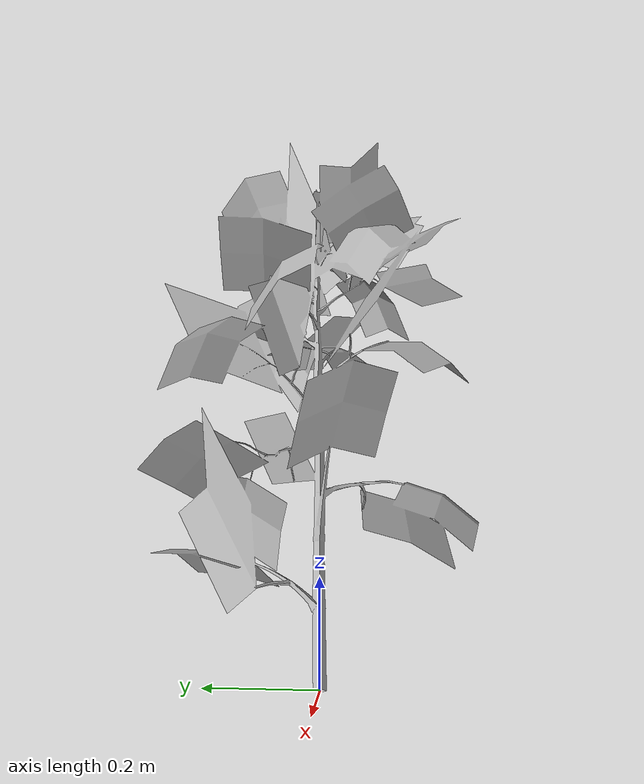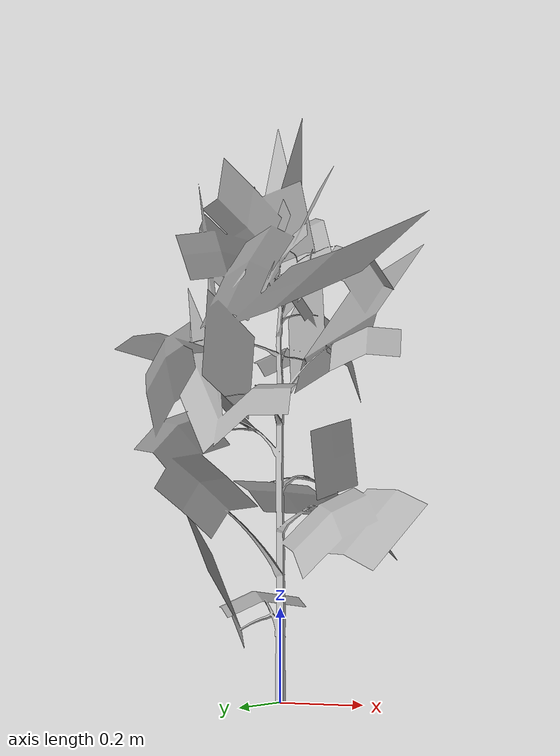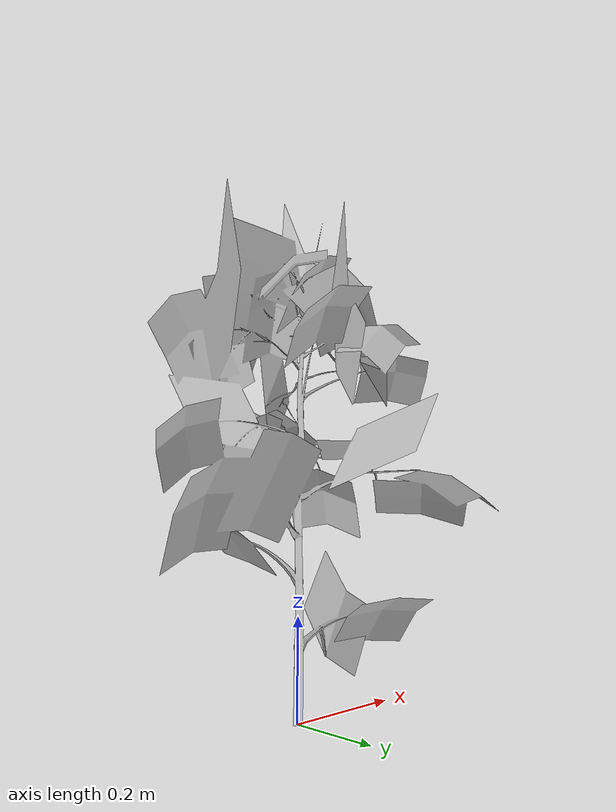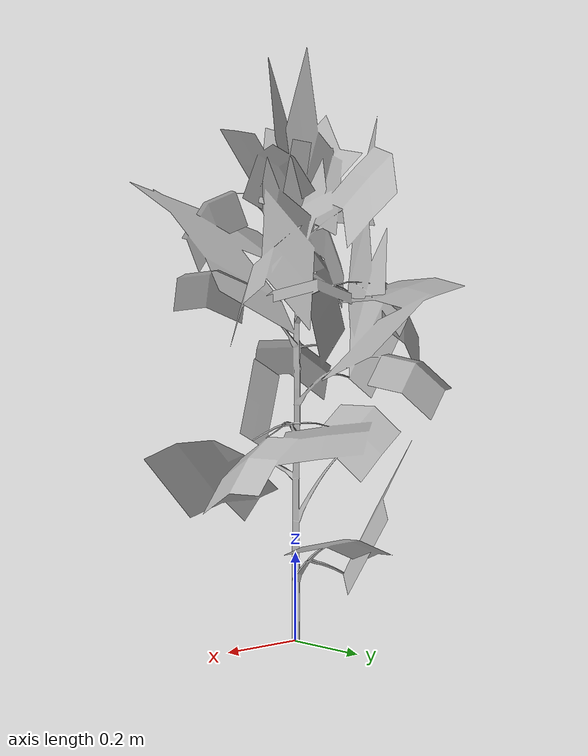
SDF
<?xml version="1.0" ?>
<sdf version="1.5">
  <model name="Oak tree">
     <static>true</static>
    <pose frame=''>0 0 0 1.57079 0 0</pose>
    <link name="link">
      <pose frame=''>0 0 0 0 0 0</pose>
      <collision name="collision">
        <geometry>
          <mesh>
            <scale>5 5 5</scale>
            <uri>model://tree_6/meshes/tree.obj</uri>
          </mesh>
        </geometry>
      </collision>
      <visual name="visual">
        <geometry>
          <mesh>

            <scale>5 5 5</scale>
            <uri>model://tree_6/meshes/tree.obj</uri>
          </mesh>
        </geometry>
      </visual>
    </link>
  </model>
</sdf>
